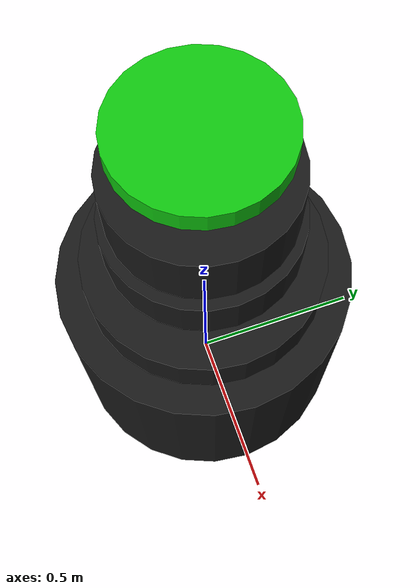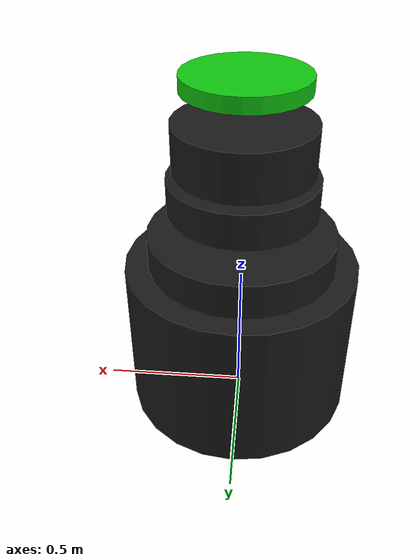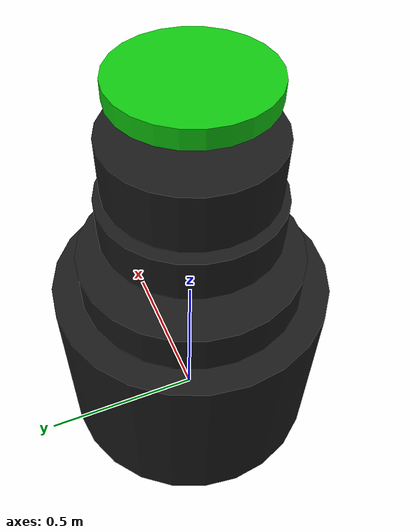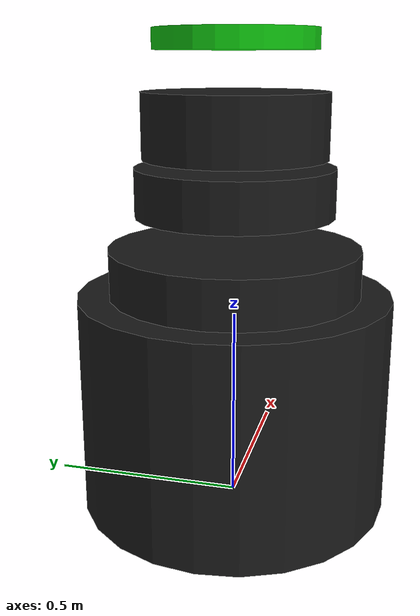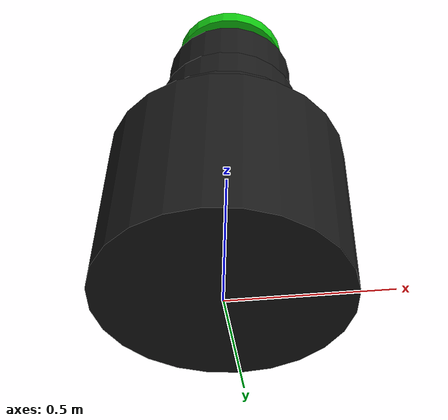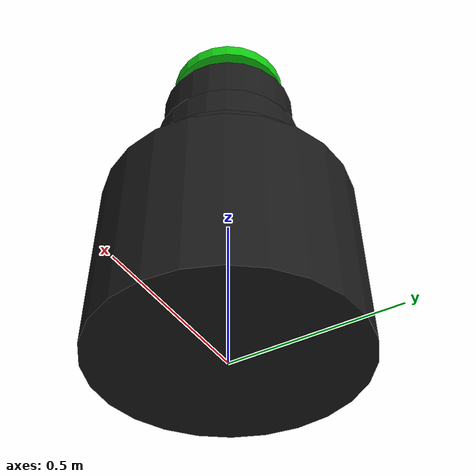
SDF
<?xml version="1.0"?>
<sdf version="1.10">
  <model name="robotx_buoy_green_led">
    <static>false</static>
    <pose>0 0 0 0 0 0</pose>
    <!-- Controlled bobbing for stable, realistic motion without toppling -->
    <plugin filename="librobotx_bobbing_plugin.dylib" name="robotx::BobbingPlugin">
      <amplitude_z_m>0.03</amplitude_z_m>
      <frequency_hz>0.18</frequency_hz>
      <drift_xy_m>0.02</drift_xy_m>
      <drift_frequency_hz>0.025</drift_frequency_hz>
      <roll_deg>0.4</roll_deg>
      <pitch_deg>0.5</pitch_deg>
      <phase_rad>2.1</phase_rad>
    </plugin>
    <link name="body_link">
      <gravity>false</gravity>
      <enable_wind>false</enable_wind>
      <collision name="body_collision_lower">
        <pose>0 0 0.28 0 0 0</pose>
        <geometry>
          <cylinder>
            <radius>0.40</radius>
            <length>0.56</length>
          </cylinder>
        </geometry>
      </collision>
      <collision name="body_collision_mid">
        <pose>0 0 0.62 0 0 0</pose>
        <geometry>
          <cylinder>
            <radius>0.32</radius>
            <length>0.12</length>
          </cylinder>
        </geometry>
      </collision>
      <collision name="body_collision_upper">
        <pose>0 0 0.82 0 0 0</pose>
        <geometry>
          <cylinder>
            <radius>0.25</radius>
            <length>0.12</length>
          </cylinder>
        </geometry>
      </collision>
      <collision name="body_collision_collar">
        <pose>0 0 0.98 0 0 0</pose>
        <geometry>
          <cylinder>
            <radius>0.23</radius>
            <length>0.16</length>
          </cylinder>
        </geometry>
      </collision>

      <visual name="body_visual_lower">
        <pose>0 0 0.28 0 0 0</pose>
        <geometry>
          <cylinder>
            <radius>0.40</radius>
            <length>0.56</length>
          </cylinder>
        </geometry>
        <material>
          <ambient>0.05 0.05 0.05 1</ambient>
          <diffuse>0.10 0.10 0.10 1</diffuse>
          <specular>0.20 0.20 0.20 1</specular>
        </material>
      </visual>
      <visual name="body_visual_mid">
        <pose>0 0 0.62 0 0 0</pose>
        <geometry>
          <cylinder>
            <radius>0.32</radius>
            <length>0.12</length>
          </cylinder>
        </geometry>
        <material>
          <ambient>0.05 0.05 0.05 1</ambient>
          <diffuse>0.10 0.10 0.10 1</diffuse>
          <specular>0.20 0.20 0.20 1</specular>
        </material>
      </visual>
      <visual name="body_visual_upper">
        <pose>0 0 0.82 0 0 0</pose>
        <geometry>
          <cylinder>
            <radius>0.25</radius>
            <length>0.12</length>
          </cylinder>
        </geometry>
        <material>
          <ambient>0.05 0.05 0.05 1</ambient>
          <diffuse>0.10 0.10 0.10 1</diffuse>
          <specular>0.20 0.20 0.20 1</specular>
        </material>
      </visual>
      <visual name="body_visual_collar">
        <pose>0 0 0.98 0 0 0</pose>
        <geometry>
          <cylinder>
            <radius>0.23</radius>
            <length>0.16</length>
          </cylinder>
        </geometry>
        <material>
          <ambient>0.05 0.05 0.05 1</ambient>
          <diffuse>0.10 0.10 0.10 1</diffuse>
          <specular>0.20 0.20 0.20 1</specular>
        </material>
      </visual>

      <visual name="beacon_cap">
        <pose>0 0 1.18 0 0 0</pose>
        <geometry>
          <cylinder>
            <radius>0.20</radius>
            <length>0.05</length>
          </cylinder>
        </geometry>
        <material>
          <ambient>0.02 0.22 0.02 1</ambient>
          <diffuse>0.06 0.78 0.06 1</diffuse>
          <emissive>0.12 1.00 0.12 1</emissive>
        </material>
      </visual>
      <light name="top_beacon" type="spot">
        <pose>0 0 1.21 0 0 0</pose>
        <cast_shadows>false</cast_shadows>
        <diffuse>0 1 0 1</diffuse>
        <specular>0.0 0.4 0.0 1</specular>
        <attenuation>
          <range>55</range>
          <constant>0.20</constant>
          <linear>0.02</linear>
          <quadratic>0.0015</quadratic>
        </attenuation>
        <direction>0 0 1</direction>
        <spot>
          <inner_angle>0.16</inner_angle>
          <outer_angle>0.30</outer_angle>
          <falloff>1.4</falloff>
        </spot>
      </light>
    </link>
  </model>
</sdf>
